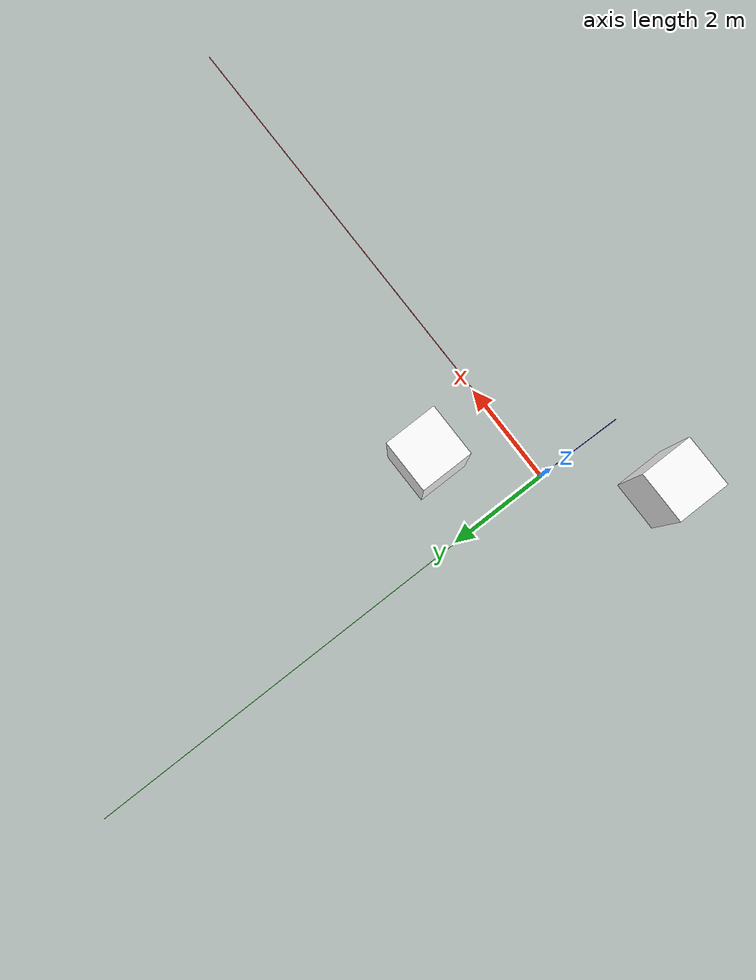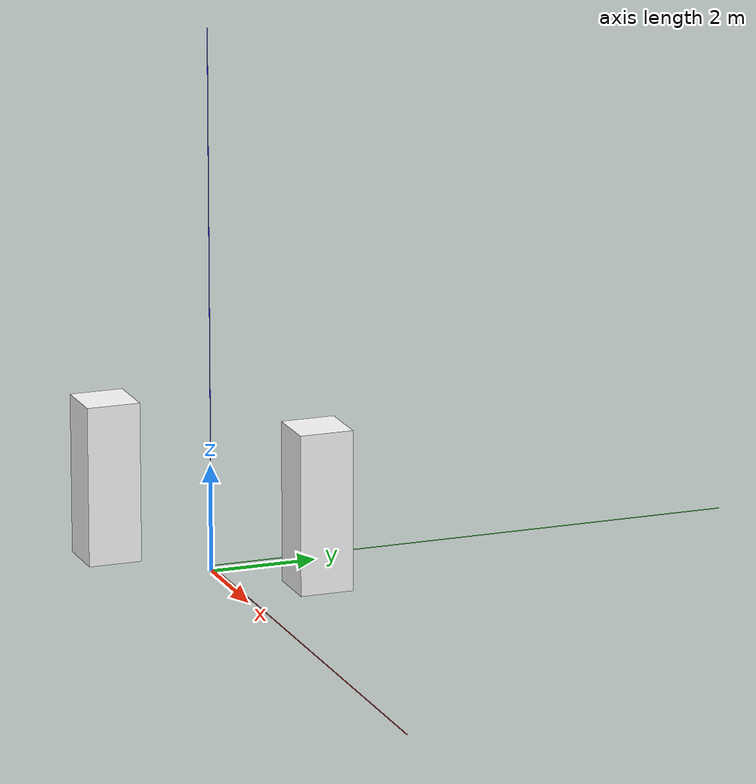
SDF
<sdf version="1.9">
 <world name="iris_runway">
  <physics name="1ms" type="ignore">
   <max_step_size>0.001</max_step_size>
   <real_time_factor>1.0</real_time_factor>
  </physics>
  <plugin filename="gz-sim-physics-system" name="gz::sim::systems::Physics"/>
  <plugin filename="gz-sim-sensors-system" name="gz::sim::systems::Sensors">
   <render_engine>ogre2</render_engine>
  </plugin>
  <plugin filename="gz-sim-user-commands-system" name="gz::sim::systems::UserCommands"/>
  <plugin filename="gz-sim-scene-broadcaster-system" name="gz::sim::systems::SceneBroadcaster"/>
  <plugin filename="gz-sim-imu-system" name="gz::sim::systems::Imu"/>
  <plugin filename="gz-sim-navsat-system" name="gz::sim::systems::NavSat"/>
  <scene><ambient>1.0 1.0 1.0</ambient><background>0.8 0.8 0.8</background></scene>
  <spherical_coordinates>
   <latitude_deg>-35.363262</latitude_deg>
   <longitude_deg>149.165237</longitude_deg>
   <elevation>584</elevation>
   <heading_deg>0</heading_deg>
   <surface_model>EARTH_WGS84</surface_model>
  </spherical_coordinates>
  <light type="directional" name="sun">
   <pose>0 0 10 0 0 0</pose>
   <diffuse>0.8 0.8 0.8 1</diffuse>
   <specular>0.8 0.8 0.8 1</specular>
   <attenuation>
    <range>1000</range>
    <constant>0.9</constant>
    <linear>0.01</linear>
    <quadratic>0.001</quadratic>
   </attenuation>
   <direction>-0.5 0.1 -0.9</direction>
  </light>
  <model name="axes">
   <static>1</static>
   <link name="link">
    <visual name="r">
     <cast_shadows>0</cast_shadows>
     <pose>5 0 0.1 0 0 0</pose>
     <geometry><box><size>10 0.01 0.01</size></box></geometry>
     <material>
      <ambient>1 0 0 0.8</ambient>
      <diffuse>1 0 0 0.8</diffuse>
      <emissive>1 0 0 0.8</emissive>
      <specular>0.5 0.5 0.5 0.8</specular>
     </material>
    </visual>
    <visual name="g">
     <cast_shadows>0</cast_shadows>
     <pose>0 5 0.1 0 0 0</pose>
     <geometry><box><size>0.01 10 0.01</size></box></geometry>
     <material>
      <ambient>0 1 0 0.8</ambient>
      <diffuse>0 1 0 0.8</diffuse>
      <emissive>0 1 0 0.8</emissive>
      <specular>0.5 0.5 0.5 0.8</specular>
     </material>
    </visual>
    <visual name="b">
     <cast_shadows>0</cast_shadows>
     <pose>0 0 5.1 0 0 0</pose>
     <geometry><box><size>0.01 0.01 10</size></box></geometry>
     <material>
      <ambient>0 0 1 0.8</ambient>
      <diffuse>0 0 1 0.8</diffuse>
      <emissive>0 0 1 0.8</emissive>
      <specular>0.5 0.5 0.5 0.8</specular>
     </material>
    </visual>
    <sensor name="navsat_sensor" type="navsat"><always_on>1</always_on><update_rate>1</update_rate></sensor>
   </link>
  </model>
  <model name="box1">
   <static>1</static>
   <pose>1.5 1.5 1.5 0 0 0</pose>
   <link name="box_link">
    <visual name="box_visual">
     <geometry><box><size>1 1 3</size></box></geometry>
     <material><ambient>1 1 1 1</ambient><diffuse>1 1 1 1</diffuse><specular>1 1 1 1</specular></material>
    </visual>
    <thermal><temperature>1000</temperature></thermal>
   </link>
  </model>
  <model name="box2">
   <static>1</static>
   <pose>-1.5 -1.5 1.5 0 0 0</pose>
   <link name="box_link">
    <visual name="box_visual">
     <geometry><box><size>1 1 3</size></box></geometry>
     <material><ambient>1 1 1 1</ambient><diffuse>1 1 1 1</diffuse><specular>1 1 1 1</specular></material>
    </visual>
    <thermal><temperature>1000</temperature></thermal>
   </link>
  </model>
 </world>
</sdf>
